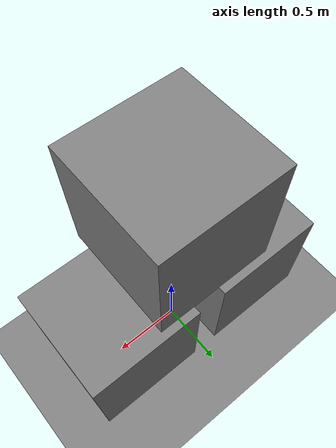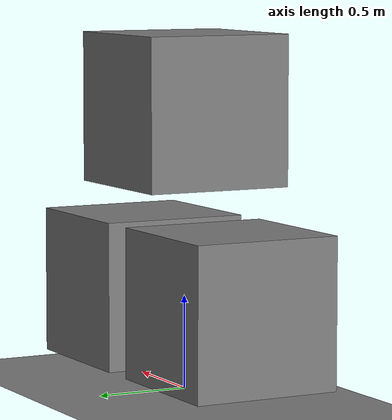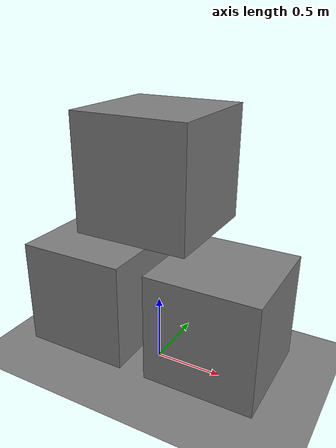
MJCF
<mujoco model="falling_boxes">
            <option gravity="0 0 -9.81" timestep="0.001"/>
            <worldbody>
                <geom name="floor" type="plane" size="5 5 0.1"/>
                <body name="box1" pos="-0.5 0 0.5">
                    <joint type="free"/>
                    <geom type="box" size="0.4 0.4 0.4" mass="1"/>
                </body>
                <body name="box2" pos="0.5 0 0.5">
                    <joint type="free"/>
                    <geom type="box" size="0.4 0.4 0.4" mass="1"/>
                </body>
                <body name="box3" pos="0 0 1.5">
                    <joint type="free"/>
                    <geom type="box" size="0.4 0.4 0.4" mass="1"/>
                </body>
            </worldbody>
        </mujoco>
